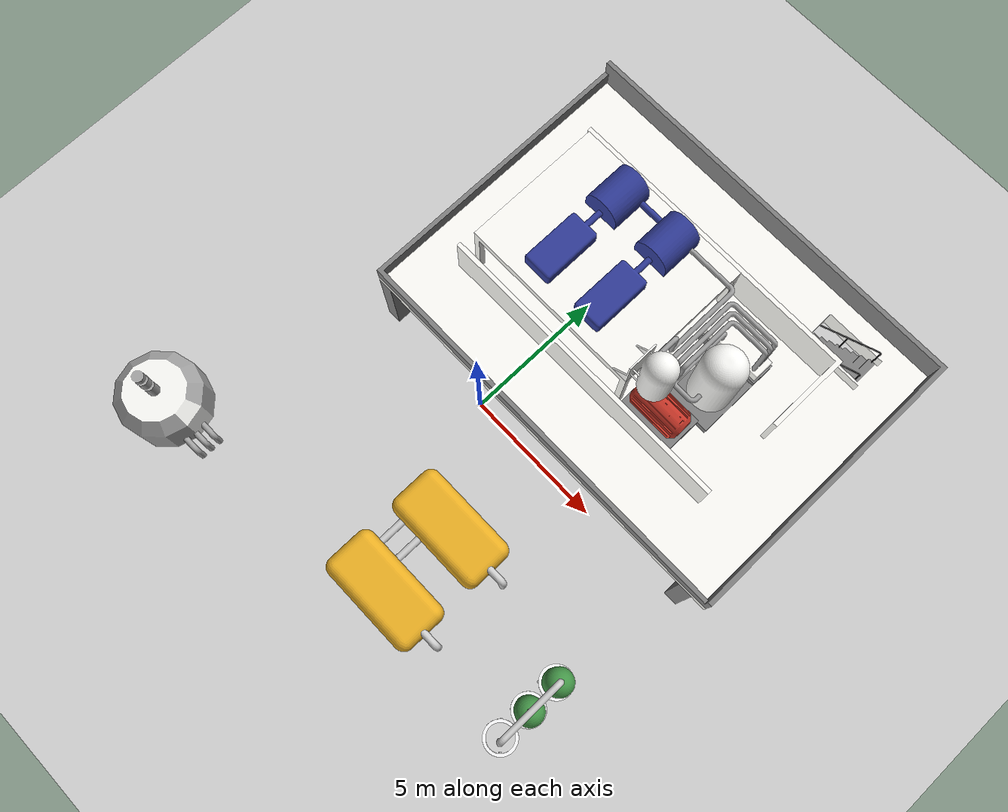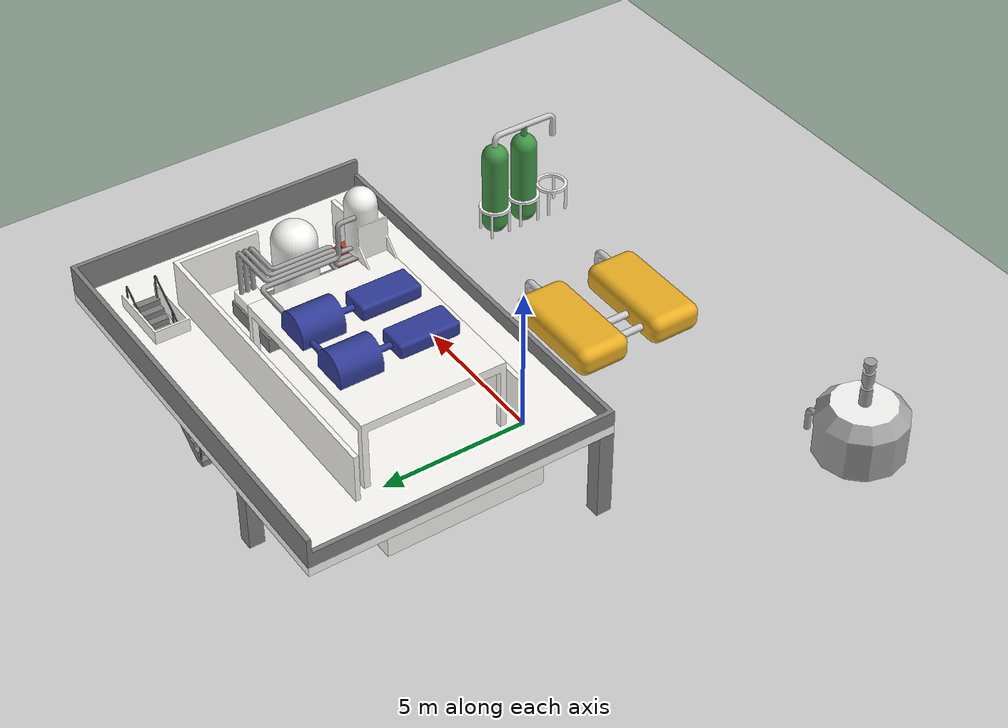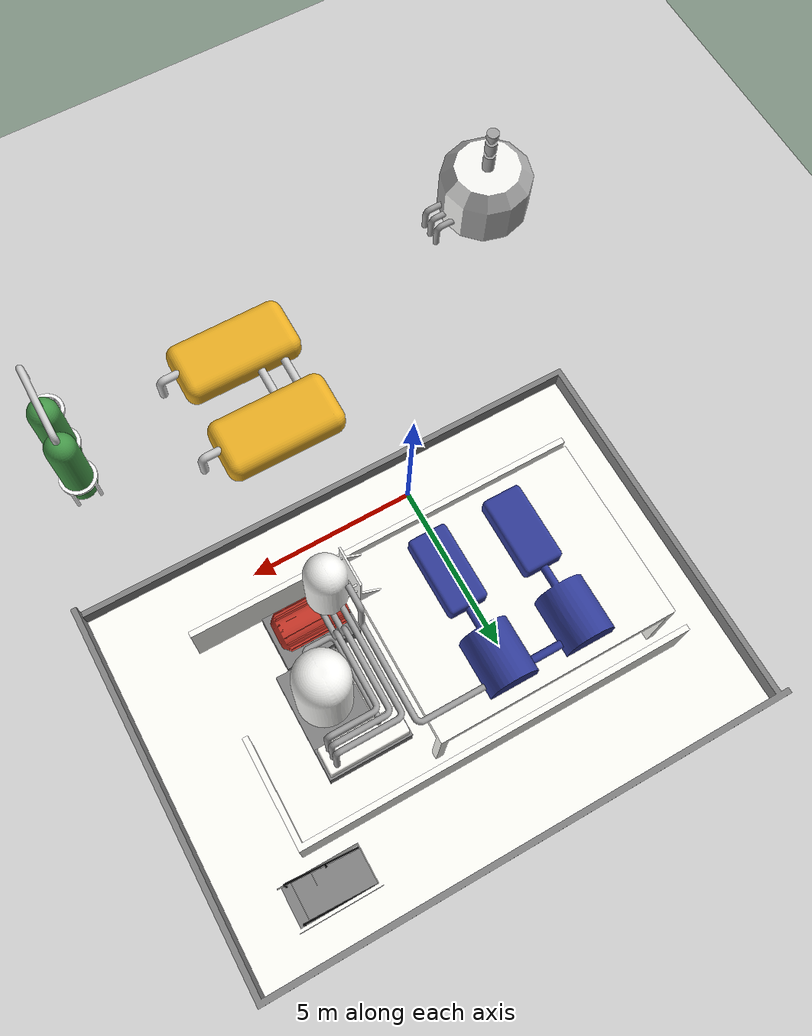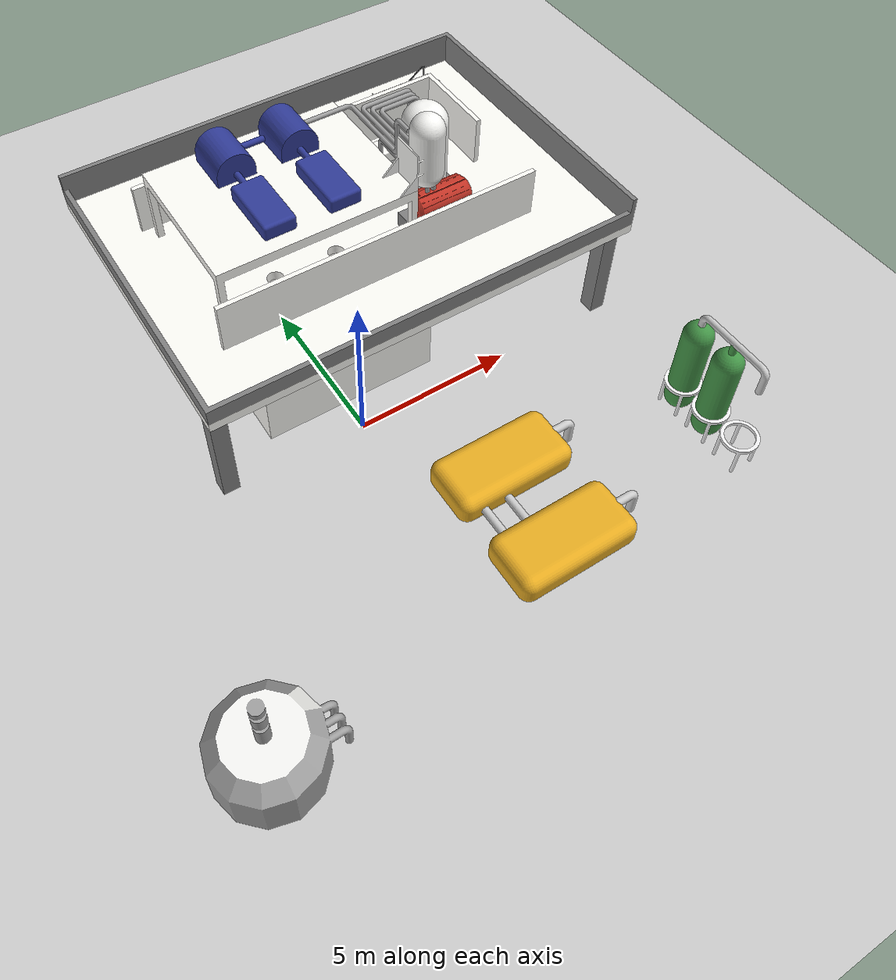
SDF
<sdf version="1.6">
 <world name="default">
  <light name="sun" type="directional">
   <cast_shadows>0</cast_shadows>
   <pose>0 0 10 0 -0 0</pose>
   <diffuse>0.8 0.8 0.8 1</diffuse>
   <specular>0.2 0.2 0.2 1</specular>
   <attenuation>
    <range>1000</range>
    <constant>0.9</constant>
    <linear>0.01</linear>
    <quadratic>0.001</quadratic>
   </attenuation>
   <direction>-0.5 0.1 -0.9</direction>
  </light>
  <include><uri>model://ground_plane</uri></include>
  <gravity>0 0 -9.8</gravity>
  <magnetic_field>6e-06 2.3e-05 -4.2e-05</magnetic_field>
  <atmosphere type="adiabatic"/>
  <physics name="default_physics" default="0" type="ode">
   <max_step_size>0.001</max_step_size>
   <real_time_factor>1</real_time_factor>
   <real_time_update_rate>1000</real_time_update_rate>
  </physics>
  <scene><ambient>0.4 0.4 0.4 1</ambient><background>0.7 0.7 0.7 1</background><shadows>0</shadows></scene>
  <spherical_coordinates>
   <surface_model>EARTH_WGS84</surface_model>
   <latitude_deg>0</latitude_deg>
   <longitude_deg>0</longitude_deg>
   <elevation>0</elevation>
   <heading_deg>0</heading_deg>
  </spherical_coordinates>
  <model name="MezzanineSupports_concrete_3">
   <static>true</static>
   <link name="link_">
    <collision name="collision_MezzanineSupports_concrete_3">
     <geometry><mesh><uri>model://reactor_room/models/MezzanineSupports_concrete_3.dae</uri></mesh></geometry>
    </collision>
    <visual name="visual_MezzanineSupports_concrete_3">
     <geometry><mesh><uri>model://reactor_room/models/MezzanineSupports_concrete_3.dae</uri></mesh></geometry>
    </visual>
   </link>
  </model>
  <model name="tankSet1_pipework_stainlessSteel_4">
   <static>true</static>
   <link name="link_">
    <collision name="collision_tankSet1_pipework_stainlessSteel_4">
     <geometry>
      <mesh><uri>model://reactor_room/models/tankSet1_pipework_stainlessSteel_4.dae</uri></mesh>
     </geometry>
    </collision>
    <visual name="visual_tankSet1_pipework_stainlessSteel_4">
     <geometry>
      <mesh><uri>model://reactor_room/models/tankSet1_pipework_stainlessSteel_4.dae</uri></mesh>
     </geometry>
    </visual>
   </link>
  </model>
  <model name="StairsHandrail_aluminium_2">
   <static>true</static>
   <link name="link_">
    <collision name="collision_StairsHandrail_aluminium_2">
     <geometry><mesh><uri>model://reactor_room/models/StairsHandrail_aluminium_2.dae</uri></mesh></geometry>
    </collision>
    <visual name="visual_StairsHandrail_aluminium_2">
     <geometry><mesh><uri>model://reactor_room/models/StairsHandrail_aluminium_2.dae</uri></mesh></geometry>
    </visual>
   </link>
  </model>
  <model name="tankSet3Support_stainlessSteel_1">
   <static>true</static>
   <link name="link_">
    <collision name="collision_tankSet3Support_stainlessSteel_1">
     <geometry><mesh><uri>model://reactor_room/models/tankSet3Support_stainlessSteel_1.dae</uri></mesh></geometry>
    </collision>
    <visual name="visual_tankSet3Support_stainlessSteel_1">
     <geometry><mesh><uri>model://reactor_room/models/tankSet3Support_stainlessSteel_1.dae</uri></mesh></geometry>
    </visual>
   </link>
  </model>
  <model name="tankSet1_pipework_stainlessSteel_3">
   <static>true</static>
   <link name="link_">
    <collision name="collision_tankSet1_pipework_stainlessSteel_3">
     <geometry>
      <mesh><uri>model://reactor_room/models/tankSet1_pipework_stainlessSteel_3.dae</uri></mesh>
     </geometry>
    </collision>
    <visual name="visual_tankSet1_pipework_stainlessSteel_3">
     <geometry>
      <mesh><uri>model://reactor_room/models/tankSet1_pipework_stainlessSteel_3.dae</uri></mesh>
     </geometry>
    </visual>
   </link>
  </model>
  <model name="tankSet1_stainlessSteel_2">
   <static>true</static>
   <link name="link_">
    <collision name="collision_tankSet1_stainlessSteel_2">
     <geometry><mesh><uri>model://reactor_room/models/tankSet1_stainlessSteel_2.dae</uri></mesh></geometry>
    </collision>
    <visual name="visual_tankSet1_stainlessSteel_2">
     <geometry><mesh><uri>model://reactor_room/models/tankSet1_stainlessSteel_2.dae</uri></mesh></geometry>
    </visual>
   </link>
  </model>
  <model name="MezzanineSupports_concrete_2">
   <static>true</static>
   <link name="link_">
    <collision name="collision_MezzanineSupports_concrete_2">
     <geometry><mesh><uri>model://reactor_room/models/MezzanineSupports_concrete_2.dae</uri></mesh></geometry>
    </collision>
    <visual name="visual_MezzanineSupports_concrete_2">
     <geometry><mesh><uri>model://reactor_room/models/MezzanineSupports_concrete_2.dae</uri></mesh></geometry>
    </visual>
   </link>
  </model>
  <model name="tankSet3Tank_stainlessSteel_2">
   <static>true</static>
   <link name="link_">
    <collision name="collision_tankSet3Tank_stainlessSteel_2">
     <geometry><mesh><uri>model://reactor_room/models/tankSet3Tank_stainlessSteel_2.dae</uri></mesh></geometry>
    </collision>
    <visual name="visual_tankSet3Tank_stainlessSteel_2">
     <geometry><mesh><uri>model://reactor_room/models/tankSet3Tank_stainlessSteel_2.dae</uri></mesh></geometry>
    </visual>
   </link>
  </model>
  <model name="MezzaninePipework_stainlessSteel_5">
   <static>true</static>
   <link name="link_">
    <collision name="collision_MezzaninePipework_stainlessSteel_5">
     <geometry>
      <mesh><uri>model://reactor_room/models/MezzaninePipework_stainlessSteel_5.dae</uri></mesh>
     </geometry>
    </collision>
    <visual name="visual_MezzaninePipework_stainlessSteel_5">
     <geometry>
      <mesh><uri>model://reactor_room/models/MezzaninePipework_stainlessSteel_5.dae</uri></mesh>
     </geometry>
    </visual>
   </link>
  </model>
  <model name="MezzanineTankSet1_stainlessSteel">
   <static>true</static>
   <link name="link_">
    <collision name="collision_MezzanineTankSet1_stainlessSteel">
     <geometry><mesh><uri>model://reactor_room/models/MezzanineTankSet1_stainlessSteel.dae</uri></mesh></geometry>
    </collision>
    <visual name="visual_MezzanineTankSet1_stainlessSteel">
     <geometry><mesh><uri>model://reactor_room/models/MezzanineTankSet1_stainlessSteel.dae</uri></mesh></geometry>
    </visual>
   </link>
  </model>
  <model name="MezzanineTankSet3_stainlessSteel">
   <static>true</static>
   <link name="link_">
    <collision name="collision_MezzanineTankSet3_stainlessSteel">
     <geometry><mesh><uri>model://reactor_room/models/MezzanineTankSet3_stainlessSteel.dae</uri></mesh></geometry>
    </collision>
    <visual name="visual_MezzanineTankSet3_stainlessSteel">
     <geometry><mesh><uri>model://reactor_room/models/MezzanineTankSet3_stainlessSteel.dae</uri></mesh></geometry>
    </visual>
   </link>
  </model>
  <model name="tankSet3Tank_stainlessSteel_1">
   <static>true</static>
   <link name="link_">
    <collision name="collision_tankSet3Tank_stainlessSteel_1">
     <geometry><mesh><uri>model://reactor_room/models/tankSet3Tank_stainlessSteel_1.dae</uri></mesh></geometry>
    </collision>
    <visual name="visual_tankSet3Tank_stainlessSteel_1">
     <geometry><mesh><uri>model://reactor_room/models/tankSet3Tank_stainlessSteel_1.dae</uri></mesh></geometry>
    </visual>
   </link>
  </model>
  <model name="tankSet3Support_stainlessSteel_3">
   <static>true</static>
   <link name="link_">
    <collision name="collision_tankSet3Support_stainlessSteel_3">
     <geometry><mesh><uri>model://reactor_room/models/tankSet3Support_stainlessSteel_3.dae</uri></mesh></geometry>
    </collision>
    <visual name="visual_tankSet3Support_stainlessSteel_3">
     <geometry><mesh><uri>model://reactor_room/models/tankSet3Support_stainlessSteel_3.dae</uri></mesh></geometry>
    </visual>
   </link>
  </model>
  <model name="StairsHandrail_aluminium_1">
   <static>true</static>
   <link name="link_">
    <collision name="collision_StairsHandrail_aluminium_1">
     <geometry><mesh><uri>model://reactor_room/models/StairsHandrail_aluminium_1.dae</uri></mesh></geometry>
    </collision>
    <visual name="visual_StairsHandrail_aluminium_1">
     <geometry><mesh><uri>model://reactor_room/models/StairsHandrail_aluminium_1.dae</uri></mesh></geometry>
    </visual>
   </link>
  </model>
  <model name="tankSet1_stainlessSteel_1">
   <static>true</static>
   <link name="link_">
    <collision name="collision_tankSet1_stainlessSteel_1">
     <geometry><mesh><uri>model://reactor_room/models/tankSet1_stainlessSteel_1.dae</uri></mesh></geometry>
    </collision>
    <visual name="visual_tankSet1_stainlessSteel_1">
     <geometry><mesh><uri>model://reactor_room/models/tankSet1_stainlessSteel_1.dae</uri></mesh></geometry>
    </visual>
   </link>
  </model>
  <model name="MezzanineTankSet_stainlessSteel">
   <static>true</static>
   <link name="link_">
    <collision name="collision_MezzanineTankSet_stainlessSteel">
     <geometry><mesh><uri>model://reactor_room/models/MezzanineTankSet_stainlessSteel.dae</uri></mesh></geometry>
    </collision>
    <visual name="visual_MezzanineTankSet_stainlessSteel">
     <geometry><mesh><uri>model://reactor_room/models/MezzanineTankSet_stainlessSteel.dae</uri></mesh></geometry>
    </visual>
   </link>
  </model>
  <model name="MezzanineTankSetPlinth_concrete">
   <static>true</static>
   <link name="link_">
    <collision name="collision_MezzanineTankSetPlinth_concrete">
     <geometry><mesh><uri>model://reactor_room/models/MezzanineTankSetPlinth_concrete.dae</uri></mesh></geometry>
    </collision>
    <visual name="visual_MezzanineTankSetPlinth_concrete">
     <geometry><mesh><uri>model://reactor_room/models/MezzanineTankSetPlinth_concrete.dae</uri></mesh></geometry>
    </visual>
   </link>
  </model>
  <model name="tankSet2_stainlessSteel">
   <static>true</static>
   <link name="link_">
    <collision name="collision_tankSet2_stainlessSteel">
     <geometry><mesh><uri>model://reactor_room/models/tankSet2_stainlessSteel.dae</uri></mesh></geometry>
    </collision>
    <visual name="visual_tankSet2_stainlessSteel">
     <geometry><mesh><uri>model://reactor_room/models/tankSet2_stainlessSteel.dae</uri></mesh></geometry>
    </visual>
   </link>
  </model>
  <model name="tankSet3Support_stainlessSteel_2">
   <static>true</static>
   <link name="link_">
    <collision name="collision_tankSet3Support_stainlessSteel_2">
     <geometry><mesh><uri>model://reactor_room/models/tankSet3Support_stainlessSteel_2.dae</uri></mesh></geometry>
    </collision>
    <visual name="visual_tankSet3Support_stainlessSteel_2">
     <geometry><mesh><uri>model://reactor_room/models/tankSet3Support_stainlessSteel_2.dae</uri></mesh></geometry>
    </visual>
   </link>
  </model>
  <model name="MezzanineTankSet4_stainlessSteel">
   <static>true</static>
   <link name="link_">
    <collision name="collision_MezzanineTankSet4_stainlessSteel">
     <geometry><mesh><uri>model://reactor_room/models/MezzanineTankSet4_stainlessSteel.dae</uri></mesh></geometry>
    </collision>
    <visual name="visual_MezzanineTankSet4_stainlessSteel">
     <geometry><mesh><uri>model://reactor_room/models/MezzanineTankSet4_stainlessSteel.dae</uri></mesh></geometry>
    </visual>
   </link>
  </model>
  <model name="MezzanineWalls_concrete">
   <static>true</static>
   <link name="link_">
    <collision name="collision_MezzanineWalls_concrete">
     <geometry><mesh><uri>model://reactor_room/models/MezzanineWalls_concrete.dae</uri></mesh></geometry>
    </collision>
    <visual name="visual_MezzanineWalls_concrete">
     <geometry><mesh><uri>model://reactor_room/models/MezzanineWalls_concrete.dae</uri></mesh></geometry>
    </visual>
   </link>
  </model>
  <model name="MezzanineShielding_boratedConcrete_1">
   <static>true</static>
   <link name="link_">
    <collision name="collision_MezzanineShielding_boratedConcrete_1">
     <geometry>
      <mesh><uri>model://reactor_room/models/MezzanineShielding_boratedConcrete_1.dae</uri></mesh>
     </geometry>
    </collision>
    <visual name="visual_MezzanineShielding_boratedConcrete_1">
     <geometry>
      <mesh><uri>model://reactor_room/models/MezzanineShielding_boratedConcrete_1.dae</uri></mesh>
     </geometry>
    </visual>
   </link>
  </model>
  <model name="MezzanineSupports_concrete_1">
   <static>true</static>
   <link name="link_">
    <collision name="collision_MezzanineSupports_concrete_1">
     <geometry><mesh><uri>model://reactor_room/models/MezzanineSupports_concrete_1.dae</uri></mesh></geometry>
    </collision>
    <visual name="visual_MezzanineSupports_concrete_1">
     <geometry><mesh><uri>model://reactor_room/models/MezzanineSupports_concrete_1.dae</uri></mesh></geometry>
    </visual>
   </link>
  </model>
  <model name="tankSet1_pipework_stainlessSteel_1">
   <static>true</static>
   <link name="link_">
    <collision name="collision_tankSet1_pipework_stainlessSteel_1">
     <geometry>
      <mesh><uri>model://reactor_room/models/tankSet1_pipework_stainlessSteel_1.dae</uri></mesh>
     </geometry>
    </collision>
    <visual name="visual_tankSet1_pipework_stainlessSteel_1">
     <geometry>
      <mesh><uri>model://reactor_room/models/tankSet1_pipework_stainlessSteel_1.dae</uri></mesh>
     </geometry>
    </visual>
   </link>
  </model>
  <model name="tankSet3Pipe_stainlessSteel">
   <static>true</static>
   <link name="link_">
    <collision name="collision_tankSet3Pipe_stainlessSteel">
     <geometry><mesh><uri>model://reactor_room/models/tankSet3Pipe_stainlessSteel.dae</uri></mesh></geometry>
    </collision>
    <visual name="visual_tankSet3Pipe_stainlessSteel">
     <geometry><mesh><uri>model://reactor_room/models/tankSet3Pipe_stainlessSteel.dae</uri></mesh></geometry>
    </visual>
   </link>
  </model>
  <model name="MezzanineFloor_boratedConcrete">
   <static>true</static>
   <link name="link_">
    <collision name="collision_MezzanineFloor_boratedConcrete">
     <geometry><mesh><uri>model://reactor_room/models/MezzanineFloor_boratedConcrete.dae</uri></mesh></geometry>
    </collision>
    <visual name="visual_MezzanineFloor_boratedConcrete">
     <geometry><mesh><uri>model://reactor_room/models/MezzanineFloor_boratedConcrete.dae</uri></mesh></geometry>
    </visual>
   </link>
  </model>
  <model name="MezzanineOverhead_stainlessSteel">
   <static>true</static>
   <link name="link_">
    <collision name="collision_MezzanineOverhead_stainlessSteel">
     <geometry><mesh><uri>model://reactor_room/models/MezzanineOverhead_stainlessSteel.dae</uri></mesh></geometry>
    </collision>
    <visual name="visual_MezzanineOverhead_stainlessSteel">
     <geometry><mesh><uri>model://reactor_room/models/MezzanineOverhead_stainlessSteel.dae</uri></mesh></geometry>
    </visual>
   </link>
  </model>
  <model name="MezzaninePipework_stainlessSteel_4">
   <static>true</static>
   <link name="link_">
    <collision name="collision_MezzaninePipework_stainlessSteel_4">
     <geometry>
      <mesh><uri>model://reactor_room/models/MezzaninePipework_stainlessSteel_4.dae</uri></mesh>
     </geometry>
    </collision>
    <visual name="visual_MezzaninePipework_stainlessSteel_4">
     <geometry>
      <mesh><uri>model://reactor_room/models/MezzaninePipework_stainlessSteel_4.dae</uri></mesh>
     </geometry>
    </visual>
   </link>
  </model>
  <model name="MezzaninePipework_stainlessSteel_2">
   <static>true</static>
   <link name="link_">
    <collision name="collision_MezzaninePipework_stainlessSteel_2">
     <geometry>
      <mesh><uri>model://reactor_room/models/MezzaninePipework_stainlessSteel_2.dae</uri></mesh>
     </geometry>
    </collision>
    <visual name="visual_MezzaninePipework_stainlessSteel_2">
     <geometry>
      <mesh><uri>model://reactor_room/models/MezzaninePipework_stainlessSteel_2.dae</uri></mesh>
     </geometry>
    </visual>
   </link>
  </model>
  <model name="MezzanineOverheadTanks_stainlessSteel">
   <static>true</static>
   <link name="link_">
    <collision name="collision_MezzanineOverheadTanks_stainlessSteel">
     <geometry>
      <mesh><uri>model://reactor_room/models/MezzanineOverheadTanks_stainlessSteel.dae</uri></mesh>
     </geometry>
    </collision>
    <visual name="visual_MezzanineOverheadTanks_stainlessSteel">
     <geometry>
      <mesh><uri>model://reactor_room/models/MezzanineOverheadTanks_stainlessSteel.dae</uri></mesh>
     </geometry>
    </visual>
   </link>
  </model>
  <model name="MezzanineTankSet3Plinth_concrete">
   <static>true</static>
   <link name="link_">
    <collision name="collision_MezzanineTankSet3Plinth_concrete">
     <geometry><mesh><uri>model://reactor_room/models/MezzanineTankSet3Plinth_concrete.dae</uri></mesh></geometry>
    </collision>
    <visual name="visual_MezzanineTankSet3Plinth_concrete">
     <geometry><mesh><uri>model://reactor_room/models/MezzanineTankSet3Plinth_concrete.dae</uri></mesh></geometry>
    </visual>
   </link>
  </model>
  <model name="Stairs_aluminium">
   <static>true</static>
   <link name="link_">
    <collision name="collision_Stairs_aluminium">
     <geometry><mesh><uri>model://reactor_room/models/Stairs_aluminium.dae</uri></mesh></geometry>
    </collision>
    <visual name="visual_Stairs_aluminium">
     <geometry><mesh><uri>model://reactor_room/models/Stairs_aluminium.dae</uri></mesh></geometry>
    </visual>
   </link>
  </model>
  <model name="TankShielding_boratedConcrete">
   <static>true</static>
   <link name="link_">
    <collision name="collision_TankShielding_boratedConcrete">
     <geometry><mesh><uri>model://reactor_room/models/TankShielding_boratedConcrete.dae</uri></mesh></geometry>
    </collision>
    <visual name="visual_TankShielding_boratedConcrete">
     <geometry><mesh><uri>model://reactor_room/models/TankShielding_boratedConcrete.dae</uri></mesh></geometry>
    </visual>
   </link>
  </model>
  <model name="tankSet1_pipework_stainlessSteel_2">
   <static>true</static>
   <link name="link_">
    <collision name="collision_tankSet1_pipework_stainlessSteel_2">
     <geometry>
      <mesh><uri>model://reactor_room/models/tankSet1_pipework_stainlessSteel_2.dae</uri></mesh>
     </geometry>
    </collision>
    <visual name="visual_tankSet1_pipework_stainlessSteel_2">
     <geometry>
      <mesh><uri>model://reactor_room/models/tankSet1_pipework_stainlessSteel_2.dae</uri></mesh>
     </geometry>
    </visual>
   </link>
  </model>
  <model name="MezzaninePipework_stainlessSteel_1">
   <static>true</static>
   <link name="link_">
    <collision name="collision_MezzaninePipework_stainlessSteel_1">
     <geometry>
      <mesh><uri>model://reactor_room/models/MezzaninePipework_stainlessSteel_1.dae</uri></mesh>
     </geometry>
    </collision>
    <visual name="visual_MezzaninePipework_stainlessSteel_1">
     <geometry>
      <mesh><uri>model://reactor_room/models/MezzaninePipework_stainlessSteel_1.dae</uri></mesh>
     </geometry>
    </visual>
   </link>
  </model>
  <model name="MezzaninePipework_stainlessSteel_3">
   <static>true</static>
   <link name="link_">
    <collision name="collision_MezzaninePipework_stainlessSteel_3">
     <geometry>
      <mesh><uri>model://reactor_room/models/MezzaninePipework_stainlessSteel_3.dae</uri></mesh>
     </geometry>
    </collision>
    <visual name="visual_MezzaninePipework_stainlessSteel_3">
     <geometry>
      <mesh><uri>model://reactor_room/models/MezzaninePipework_stainlessSteel_3.dae</uri></mesh>
     </geometry>
    </visual>
   </link>
  </model>
  <model name="MezzanineShielding_boratedConcrete_2">
   <static>true</static>
   <link name="link_">
    <collision name="collision_MezzanineShielding_boratedConcrete_2">
     <geometry>
      <mesh><uri>model://reactor_room/models/MezzanineShielding_boratedConcrete_2.dae</uri></mesh>
     </geometry>
    </collision>
    <visual name="visual_MezzanineShielding_boratedConcrete_2">
     <geometry>
      <mesh><uri>model://reactor_room/models/MezzanineShielding_boratedConcrete_2.dae</uri></mesh>
     </geometry>
    </visual>
   </link>
  </model>
  <model name="MezzanineControlSystem_aluminium_2">
   <static>true</static>
   <link name="link_">
    <collision name="collision_MezzanineControlSystem_aluminium_2">
     <geometry>
      <mesh><uri>model://reactor_room/models/MezzanineControlSystem_aluminium_2.dae</uri></mesh>
     </geometry>
    </collision>
    <visual name="visual_MezzanineControlSystem_aluminium_2">
     <geometry>
      <mesh><uri>model://reactor_room/models/MezzanineControlSystem_aluminium_2.dae</uri></mesh>
     </geometry>
    </visual>
   </link>
  </model>
  <model name="MezzanineTankSet4Plinth_concrete">
   <static>true</static>
   <link name="link_">
    <collision name="collision_MezzanineTankSet4Plinth_concrete">
     <geometry><mesh><uri>model://reactor_room/models/MezzanineTankSet4Plinth_concrete.dae</uri></mesh></geometry>
    </collision>
    <visual name="visual_MezzanineTankSet4Plinth_concrete">
     <geometry><mesh><uri>model://reactor_room/models/MezzanineTankSet4Plinth_concrete.dae</uri></mesh></geometry>
    </visual>
   </link>
  </model>
 </world>
</sdf>
